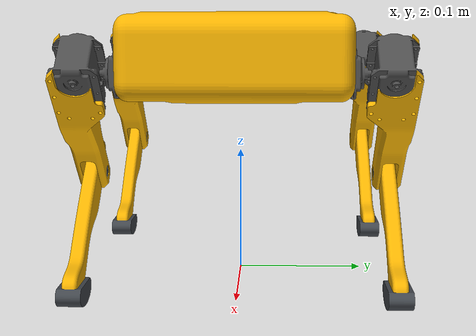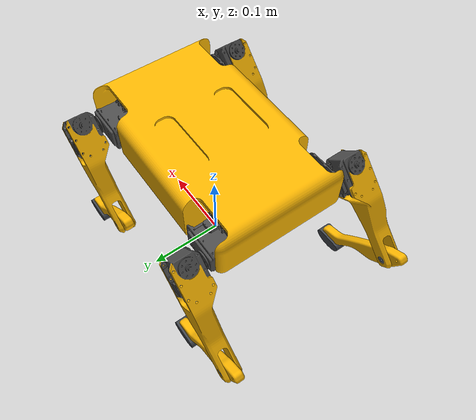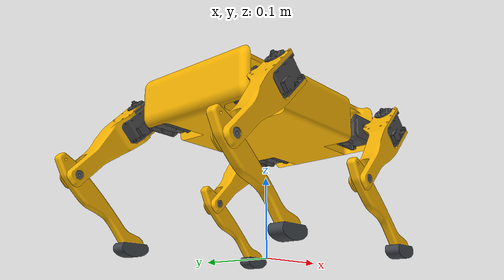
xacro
<?xml version="1.0"?>
<robot xmlns:xacro="http://www.ros.org/wiki/xacro" name="quadruped">

    <xacro:property name="M_PI" value="3.1415"/>

    <xacro:property name="body_length" value="0.272"/>
    <xacro:property name="body_width" value="0.168"/>
    <xacro:property name="body_height" value="0.064"/>

    <xacro:property name="L" value="0.2291"/>
    <xacro:property name="W" value="0.14"/>
    <xacro:property name="H" value="0.17"/>
    <xacro:property name="L1" value="0.048"/>

    <xacro:property name="hip_length" value="0.0415"/>
    <xacro:property name="femur_length" value="0.120"/>
    <xacro:property name="tibia_length" value="0.120"/>
    <xacro:property name="femur_thickness" value="0.022"/>
    <xacro:property name="femur_offset" value="0.0053"/>

    <xacro:property name="leg_x_offset" value="0.11455"/>
    <xacro:property name="leg_y_offset" value="0.07"/>
    <xacro:property name="leg_z_offset" value="0.0208"/>

    <xacro:property name="effort_limit" value="2"/>

    <xacro:macro name="leg" params="prefix left front *joint_pose">

        <link name="${prefix}_hip_fixed">
            <collision>
                <geometry>
                    <sphere radius="0.001"/>
                </geometry>
            </collision>
            <inertial>
                <mass value="0.001"/>
                <inertia ixx="1e-6" ixy="0.0" ixz="0.0" iyy="1e-6" iyz="0.0" izz="1e-6"/>
            </inertial>
        </link>

        <joint name="${prefix}_hip_fixed_joint" type="fixed">
            <parent link="base_link"/>
            <child link="${prefix}_hip_fixed"/>
            <xacro:insert_block name="joint_pose"/>
        </joint>

        <link name="${prefix}_hip">

            <xacro:if value="${front}">
                <xacro:if value="${left}">
                    <xacro:property name="hip_rpy" value="0.0 0.0 0.0"/>
                </xacro:if>
                <xacro:unless value="${left}">
                    <xacro:property name="hip_rpy" value="${M_PI} 0.0 0.0"/>
                </xacro:unless>
            </xacro:if>
            <xacro:unless value="${front}">
                <xacro:if value="${left}">
                    <xacro:property name="hip_rpy" value="${M_PI} 0.0 ${M_PI}"/>
                </xacro:if>

                <xacro:unless value="${left}">
                    <xacro:property name="hip_rpy" value="0.0 0.0 ${M_PI}"/>
                </xacro:unless>
            </xacro:unless>

            <visual>
                <origin xyz="0.0 0.0 0.0" rpy="${hip_rpy}"/>
                <geometry>
                    <mesh filename="file://$(find black_mouth_description)/meshes/hip.dae" />
                </geometry>
            </visual>
            <collision>
                <xacro:if value="${front}">
                    <origin xyz="-0.0149 0.0 0.0" rpy="0.0 0.0 0.0"/>
                </xacro:if>
                <xacro:unless value="${front}">
                    <origin xyz="0.0149 0.0 0.0" rpy="0.0 0.0 0.0"/>
                </xacro:unless>
                <geometry>
                    <box size="0.0538 0.036 0.036"/>
                </geometry>
            </collision>
            <inertial>
                <xacro:if value="${front}">
                    <origin xyz="-0.011 0.0 0.0" rpy="${hip_rpy}"/>
                </xacro:if>
                <xacro:unless value="${front}">
                    <origin xyz="0.011 0.0 0.0" rpy="${hip_rpy}"/>
                </xacro:unless>
                <mass value="0.077"/>
                <inertia ixx="1.365e-5" ixy="-6.888e-7" ixz="2.025e-8" iyy="1.824e-5" iyz="-8.308e-9" izz="2.204e-5"/>
            </inertial>
        </link>

        <gazebo reference="${prefix}_hip">
            <mu1>0.4</mu1>
            <mu2>0.4</mu2>
            <selfCollide>true</selfCollide>
        </gazebo>

        <joint name="${prefix}_hip_roll_joint" type="revolute">
            <origin xyz="0.0 0.0 0.0" rpy="0.0 0.0 0.0"/>
            <parent link="${prefix}_hip_fixed"/>
            <child link="${prefix}_hip"/>
            <axis xyz="1 0 0"/>
            <limit lower="${-M_PI/4}" upper="${M_PI/4}" velocity="5.75" effort="${effort_limit}"/>
            <xacro:insert_block name="joint_pose"/>
            <dynamics damping="0.1" friction="0.01" />
        </joint>

        <link name="${prefix}_femur">
            <visual>
                <origin xyz="0.0 0 ${-femur_offset}" rpy="0.0 0.0 0.0 "/>
                <geometry>
                    <xacro:if value="${left}">
                        <mesh filename="file://$(find black_mouth_description)/meshes/left_femur.dae" />
                    </xacro:if>
                    <xacro:unless value="${left}">
                        <mesh filename="file://$(find black_mouth_description)/meshes/right_femur.dae" />
                    </xacro:unless>
                </geometry>
            </visual>
            <collision>
                <xacro:if value="${left}">
                    <origin xyz="0.0 0.0 ${-femur_offset}" rpy="0.0 0.0 0.0"/>
                </xacro:if>
                <xacro:unless value="${left}">
                    <origin xyz="0.0 0.0 ${-femur_offset}" rpy="0.0 0.0 ${M_PI}"/>
                </xacro:unless>
                <geometry>
                    <mesh filename="file://$(find black_mouth_description)/meshes/femur.stl"/>
                </geometry>
            </collision>
            <inertial>
                <xacro:if value="${left}">
                    <mass value="0.118"/>
                    <origin xyz="-1.830e-4 0.002 -0.019" rpy="0.0 0.0 0.0"/>
                    <inertia ixx="1.604e-4" ixy="-5.665e-8" ixz="0.00000115" iyy="1.647e-4" iyz="1.108e-5" izz="2.100e-5"/>
                </xacro:if>
                <xacro:unless value="${left}">
                    <mass value="0.118"/>
                    <origin xyz="-1.830e-4 -0.002 -0.019" rpy="0.0 0.0 0.0"/>
                    <inertia ixx="1.604e-4" ixy="3.969e-8" ixz="1.151e-6" iyy="1.647e-4" iyz="-1.105e-5" izz="2.099e-5"/>
                </xacro:unless>
            </inertial>
        </link>

        <gazebo reference="${prefix}_femur">
            <mu1>0.4</mu1>
            <mu2>0.4</mu2>
            <selfCollide>true</selfCollide>
        </gazebo>

        <joint name="${prefix}_hip_pitch_joint" type="revolute">
            <xacro:if value="${left}">
                <origin xyz="0 ${hip_length} 0.0" rpy="0.0 ${M_PI/4} 0.0"/>
            </xacro:if>
            <xacro:unless value="${left}">
                <origin xyz="0 ${-hip_length} 0.0" rpy="0.0 ${M_PI/4} 0.0"/>
            </xacro:unless>
            <parent link="${prefix}_hip"/>
            <child link="${prefix}_femur"/>
            <axis xyz="0 1 0"/>
            <limit lower="${-M_PI/3}" upper="${M_PI/3}" velocity="5.75" effort="${effort_limit}"/>
            <dynamics damping="0.1" friction="0.01" />
        </joint>

        <link name="${prefix}_tibia">

            <visual>
                <origin xyz="0.0 0.0 0.0 " rpy="0.0 0.0 0.0"/>
                <geometry>
                    <mesh filename="file://$(find black_mouth_description)/meshes/tibia.dae" />
                </geometry>
            </visual>
            <collision>
                <origin xyz="0.0 0.0 0.0 " rpy="0.0 0.0 0.0"/>
                <geometry>
                    <mesh filename="file://$(find black_mouth_description)/meshes/tibia.stl"/>
                </geometry>
            </collision>
            <inertial>
                <mass value="0.035"/>
                <origin xyz="0.005 0.0 -0.06" rpy="0.0 0.0 0.0"/>
                <inertia ixx="8.305e-5" ixy="-4.892e-10" ixz="6.002e-6" iyy="8.447e-5" iyz="-4.088e-10" izz="2.687e-6"/>
            </inertial>
        </link>

        <gazebo reference="${prefix}_tibia">
            <mu1>1.0</mu1>
            <mu2>1.0</mu2>
            <minDepth>0.0002</minDepth>
            <kp value="1000000.0"/>
            <kd value="100.0"/>
            <selfCollide>true</selfCollide>
        </gazebo>

        <joint name="${prefix}_elbow_joint" type="revolute">
            <xacro:if value="${left}">
                <origin xyz="0.00 ${femur_thickness/2 - 0.0042} ${-femur_length}" rpy="0.0 ${-M_PI/2} 0.0"/>
            </xacro:if>
            <xacro:unless value="${left}">
                <origin xyz="0.00 ${-femur_thickness/2 + 0.0042} ${-femur_length}" rpy="0.0 ${-M_PI/2} 0.0"/>
            </xacro:unless>
            <parent link="${prefix}_femur"/>
            <child link="${prefix}_tibia"/>
            <axis xyz="0 1 0"/>
            <limit lower="${-M_PI/5}" upper="${M_PI/5}" velocity="5.75" effort="${effort_limit}"/>
            <dynamics damping="0.00" friction="0.01" />
        </joint>

        <link name="${prefix}_foot"/>

        <joint name="${prefix}_foot_joint" type="fixed">
            <parent link="${prefix}_tibia"/>
            <child link="${prefix}_foot"/>
            <origin xyz="0.0 0.0 ${-tibia_length}" rpy="0.0 ${M_PI/4} 0.0"/>
        </joint>
    </xacro:macro>

    <link name="base_footprint">

    </link>

    <link name="base_link">
        <visual>
            <origin xyz="0.0 0.0 ${-leg_z_offset}" rpy="0.0 0.0 0.0"/>
            <geometry>
                <mesh filename="file://$(find black_mouth_description)/meshes/base_link.dae" />
            </geometry>
        </visual>
        <collision>
            <origin xyz="0.0 0.0 ${-leg_z_offset}" rpy="0.0 0.0 0.0"/>
            <geometry>
                <mesh filename="file://$(find black_mouth_description)/meshes/base_link.stl"/>
            </geometry>
        </collision>
        <inertial>
            <mass value="1.28"/>
            <origin xyz="0.0015 1.622e-4 ${0.0238-leg_z_offset}" rpy="0.0 0.0 0.0"/>
            <inertia ixx="0.00327123" ixy="-2.696e-6" ixz="-1.456e-5" iyy="0.00459934" iyz="-1.166e-5" izz="0.00718769"/>
        </inertial>
    </link>

    <gazebo reference="base_footprint">
        <mu1>0.4</mu1>
        <mu2>0.4</mu2>
        <selfCollide>true</selfCollide>
    </gazebo>

    <gazebo reference="base_link">
        <mu1>0.4</mu1>
        <mu2>0.4</mu2>
        <selfCollide>true</selfCollide>
    </gazebo>

    <joint name="base_footprint_joint" type="fixed">
        <parent link="base_footprint"/>
        <child link="base_link"/>
        <origin xyz="0.0 0.0 0.17" rpy="0.0 0.0 0.0"/>
    </joint>

    <xacro:leg prefix="front_left" left="${True}" front="${True}">
        <origin xyz="${leg_x_offset} ${leg_y_offset} 0.0" rpy="0.0 0.0 0.0"/>
    </xacro:leg>

    <xacro:leg prefix="front_right" left="${False}" front="${True}">
        <origin xyz="${leg_x_offset} ${-leg_y_offset} 0.0" rpy="0.0 0.0 0.0"/>
    </xacro:leg>

    <xacro:leg prefix="back_left" left="${True}" front="${False}">
        <origin xyz="${-leg_x_offset} ${leg_y_offset} 0.0" rpy="0.0 0.0 0.0"/>
    </xacro:leg>

    <xacro:leg prefix="back_right" left="${False}" front="${False}" >
        <origin xyz="${-leg_x_offset} ${-leg_y_offset} 0.0" rpy="0.0 0.0 0.0"/>
    </xacro:leg>

    <link name="imu_link"/>

    <joint name="imu_joint" type="fixed">
        <origin xyz="0.0 0.0 0.0" rpy="0.0 0.0 0.0"/>
        <parent link="base_link"/>
        <child link="imu_link"/>
        <axis xyz="0.075 0.0 0.0738"/>
    </joint>

    <gazebo reference="imu_link">
        <gravity>true</gravity>
        <sensor name="imu_sensor" type="imu">
            <always_on>true</always_on>
            <update_rate>100</update_rate>
            <visualize>true</visualize>
            <topic>__default_topic__</topic>
            <plugin filename="libgazebo_ros_imu_sensor.so" name="imu_plugin">
                <topicName>imu</topicName>
                <bodyName>imu_link</bodyName>
                <updateRateHZ>10.0</updateRateHZ>
                <gaussianNoise>0.0</gaussianNoise>
                <xyzOffset>0 0 0</xyzOffset>
                <rpyOffset>0 0 0</rpyOffset>
                <frameName>imu_link</frameName>
                <initialOrientationAsReference>false</initialOrientationAsReference>
            </plugin>
            <pose>0 0 0 0 0 0</pose>
        </sensor>
    </gazebo>

    <!-- Default feet positions -->
    <link name="front_right_foot_default"/>
    <link name="front_left_foot_default"/>
    <link name="back_right_foot_default"/>
    <link name="back_left_foot_default"/>

    <joint name="joint_front_right_foot_default" type="fixed">
        <parent link="base_link"/>
        <child link="front_right_foot_default"/>
        <origin xyz="${L/2} -${W/2 + L1} ${-H}" rpy="0.0 0.0 0.0"/>
    </joint>

    <joint name="joint_front_left_foot_default" type="fixed">
        <parent link="base_link"/>
        <child link="front_left_foot_default"/>
        <origin xyz="${L/2} ${W/2 + L1} ${-H}" rpy="0.0 0.0 0.0"/>
    </joint>

    <joint name="joint_back_right_foot_default" type="fixed">
        <parent link="base_link"/>
        <child link="back_right_foot_default"/>
        <origin xyz="-${L/2} -${W/2 + L1} ${-H}" rpy="0.0 0.0 0.0"/>
    </joint>

    <joint name="joint_back_left_foot_default" type="fixed">
        <parent link="base_link"/>
        <child link="back_left_foot_default"/>
        <origin xyz="-${L/2} ${W/2 + L1} ${-H}" rpy="0.0 0.0 0.0"/>
    </joint>

    <!-- Ros2 Control -->
    <xacro:include filename="$(find black_mouth_control)/urdf/real_robot.urdf.xacro"/>

</robot>
